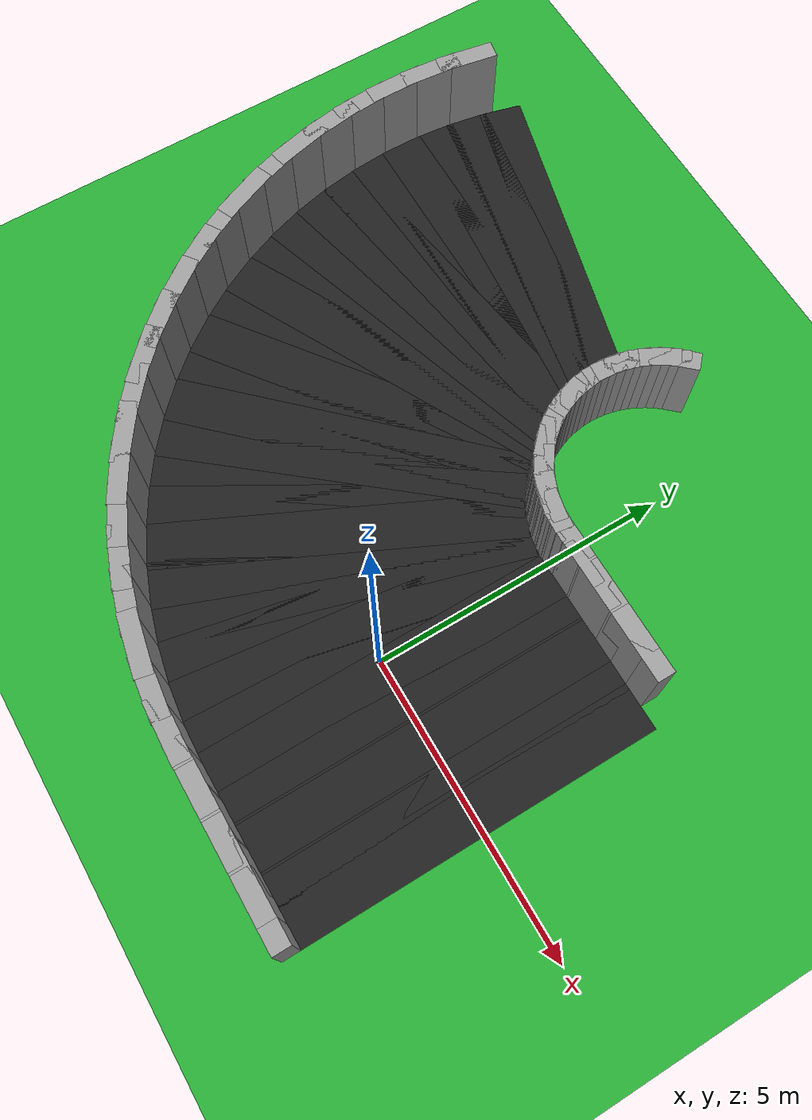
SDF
<sdf version="1.6">
 <world name="obstacle_mid">
  <include><uri>model://sun</uri></include>
  <model name="ground_plane">
   <static>true</static>
   <link name="link">
    <collision name="collision">
     <surface><friction><ode><mu>100</mu><mu2>50</mu2></ode></friction></surface>
     <geometry><plane><normal>0 0 1</normal><size>120 120</size></plane></geometry>
    </collision>
    <visual name="visual">
     <geometry><plane><normal>0 0 1</normal><size>120 120</size></plane></geometry>
     <material>
      <script><uri>file://media/materials/scripts/gazebo.material</uri><name>Gazebo/Green</name></script>
     </material>
    </visual>
   </link>
  </model>
  <model name="asphalt_0">
   <static>true</static>
   <pose>0.200 0.000 0.005 0 0 0.00000</pose>
   <link name="link">
    <visual name="visual">
     <geometry><box><size>0.760 6.000 0.010</size></box></geometry>
     <material>
      <script><uri>file://media/materials/scripts/gazebo.material</uri><name>Gazebo/Black</name></script>
     </material>
    </visual>
   </link>
  </model>
  <model name="curbL_0">
   <static>true</static>
   <pose>0.200 3.150 0.750 0 0 0.00000</pose>
   <link name="link">
    <collision name="collision"><geometry><box><size>0.760 0.300 1.500</size></box></geometry></collision>
    <visual name="visual">
     <geometry><box><size>0.760 0.300 1.500</size></box></geometry>
     <material>
      <script><uri>file://media/materials/scripts/gazebo.material</uri><name>Gazebo/Grey</name></script>
     </material>
    </visual>
   </link>
  </model>
  <model name="curbR_0">
   <static>true</static>
   <pose>0.200 -3.150 0.750 0 0 0.00000</pose>
   <link name="link">
    <collision name="collision"><geometry><box><size>0.760 0.300 1.500</size></box></geometry></collision>
    <visual name="visual">
     <geometry><box><size>0.760 0.300 1.500</size></box></geometry>
     <material>
      <script><uri>file://media/materials/scripts/gazebo.material</uri><name>Gazebo/Grey</name></script>
     </material>
    </visual>
   </link>
  </model>
  <model name="asphalt_1">
   <static>true</static>
   <pose>0.600 0.000 0.005 0 0 0.00000</pose>
   <link name="link">
    <visual name="visual">
     <geometry><box><size>0.760 6.000 0.010</size></box></geometry>
     <material>
      <script><uri>file://media/materials/scripts/gazebo.material</uri><name>Gazebo/Black</name></script>
     </material>
    </visual>
   </link>
  </model>
  <model name="curbL_1">
   <static>true</static>
   <pose>0.600 3.150 0.750 0 0 0.00000</pose>
   <link name="link">
    <collision name="collision"><geometry><box><size>0.760 0.300 1.500</size></box></geometry></collision>
    <visual name="visual">
     <geometry><box><size>0.760 0.300 1.500</size></box></geometry>
     <material>
      <script><uri>file://media/materials/scripts/gazebo.material</uri><name>Gazebo/Grey</name></script>
     </material>
    </visual>
   </link>
  </model>
  <model name="curbR_1">
   <static>true</static>
   <pose>0.600 -3.150 0.750 0 0 0.00000</pose>
   <link name="link">
    <collision name="collision"><geometry><box><size>0.760 0.300 1.500</size></box></geometry></collision>
    <visual name="visual">
     <geometry><box><size>0.760 0.300 1.500</size></box></geometry>
     <material>
      <script><uri>file://media/materials/scripts/gazebo.material</uri><name>Gazebo/Grey</name></script>
     </material>
    </visual>
   </link>
  </model>
  <model name="asphalt_2">
   <static>true</static>
   <pose>1.000 0.000 0.005 0 0 0.00000</pose>
   <link name="link">
    <visual name="visual">
     <geometry><box><size>0.760 6.000 0.010</size></box></geometry>
     <material>
      <script><uri>file://media/materials/scripts/gazebo.material</uri><name>Gazebo/Black</name></script>
     </material>
    </visual>
   </link>
  </model>
  <model name="curbL_2">
   <static>true</static>
   <pose>1.000 3.150 0.750 0 0 0.00000</pose>
   <link name="link">
    <collision name="collision"><geometry><box><size>0.760 0.300 1.500</size></box></geometry></collision>
    <visual name="visual">
     <geometry><box><size>0.760 0.300 1.500</size></box></geometry>
     <material>
      <script><uri>file://media/materials/scripts/gazebo.material</uri><name>Gazebo/Grey</name></script>
     </material>
    </visual>
   </link>
  </model>
  <model name="curbR_2">
   <static>true</static>
   <pose>1.000 -3.150 0.750 0 0 0.00000</pose>
   <link name="link">
    <collision name="collision"><geometry><box><size>0.760 0.300 1.500</size></box></geometry></collision>
    <visual name="visual">
     <geometry><box><size>0.760 0.300 1.500</size></box></geometry>
     <material>
      <script><uri>file://media/materials/scripts/gazebo.material</uri><name>Gazebo/Grey</name></script>
     </material>
    </visual>
   </link>
  </model>
  <model name="asphalt_3">
   <static>true</static>
   <pose>1.400 0.000 0.005 0 0 0.00000</pose>
   <link name="link">
    <visual name="visual">
     <geometry><box><size>0.760 6.000 0.010</size></box></geometry>
     <material>
      <script><uri>file://media/materials/scripts/gazebo.material</uri><name>Gazebo/Black</name></script>
     </material>
    </visual>
   </link>
  </model>
  <model name="curbL_3">
   <static>true</static>
   <pose>1.400 3.150 0.750 0 0 0.00000</pose>
   <link name="link">
    <collision name="collision"><geometry><box><size>0.760 0.300 1.500</size></box></geometry></collision>
    <visual name="visual">
     <geometry><box><size>0.760 0.300 1.500</size></box></geometry>
     <material>
      <script><uri>file://media/materials/scripts/gazebo.material</uri><name>Gazebo/Grey</name></script>
     </material>
    </visual>
   </link>
  </model>
  <model name="curbR_3">
   <static>true</static>
   <pose>1.400 -3.150 0.750 0 0 0.00000</pose>
   <link name="link">
    <collision name="collision"><geometry><box><size>0.760 0.300 1.500</size></box></geometry></collision>
    <visual name="visual">
     <geometry><box><size>0.760 0.300 1.500</size></box></geometry>
     <material>
      <script><uri>file://media/materials/scripts/gazebo.material</uri><name>Gazebo/Grey</name></script>
     </material>
    </visual>
   </link>
  </model>
  <model name="asphalt_4">
   <static>true</static>
   <pose>1.800 0.000 0.005 0 0 0.00000</pose>
   <link name="link">
    <visual name="visual">
     <geometry><box><size>0.760 6.000 0.010</size></box></geometry>
     <material>
      <script><uri>file://media/materials/scripts/gazebo.material</uri><name>Gazebo/Black</name></script>
     </material>
    </visual>
   </link>
  </model>
  <model name="curbL_4">
   <static>true</static>
   <pose>1.800 3.150 0.750 0 0 0.00000</pose>
   <link name="link">
    <collision name="collision"><geometry><box><size>0.760 0.300 1.500</size></box></geometry></collision>
    <visual name="visual">
     <geometry><box><size>0.760 0.300 1.500</size></box></geometry>
     <material>
      <script><uri>file://media/materials/scripts/gazebo.material</uri><name>Gazebo/Grey</name></script>
     </material>
    </visual>
   </link>
  </model>
  <model name="curbR_4">
   <static>true</static>
   <pose>1.800 -3.150 0.750 0 0 0.00000</pose>
   <link name="link">
    <collision name="collision"><geometry><box><size>0.760 0.300 1.500</size></box></geometry></collision>
    <visual name="visual">
     <geometry><box><size>0.760 0.300 1.500</size></box></geometry>
     <material>
      <script><uri>file://media/materials/scripts/gazebo.material</uri><name>Gazebo/Grey</name></script>
     </material>
    </visual>
   </link>
  </model>
  <model name="asphalt_5">
   <static>true</static>
   <pose>2.200 0.000 0.005 0 0 0.00000</pose>
   <link name="link">
    <visual name="visual">
     <geometry><box><size>0.760 6.000 0.010</size></box></geometry>
     <material>
      <script><uri>file://media/materials/scripts/gazebo.material</uri><name>Gazebo/Black</name></script>
     </material>
    </visual>
   </link>
  </model>
  <model name="curbL_5">
   <static>true</static>
   <pose>2.200 3.150 0.750 0 0 0.00000</pose>
   <link name="link">
    <collision name="collision"><geometry><box><size>0.760 0.300 1.500</size></box></geometry></collision>
    <visual name="visual">
     <geometry><box><size>0.760 0.300 1.500</size></box></geometry>
     <material>
      <script><uri>file://media/materials/scripts/gazebo.material</uri><name>Gazebo/Grey</name></script>
     </material>
    </visual>
   </link>
  </model>
  <model name="curbR_5">
   <static>true</static>
   <pose>2.200 -3.150 0.750 0 0 0.00000</pose>
   <link name="link">
    <collision name="collision"><geometry><box><size>0.760 0.300 1.500</size></box></geometry></collision>
    <visual name="visual">
     <geometry><box><size>0.760 0.300 1.500</size></box></geometry>
     <material>
      <script><uri>file://media/materials/scripts/gazebo.material</uri><name>Gazebo/Grey</name></script>
     </material>
    </visual>
   </link>
  </model>
  <model name="asphalt_6">
   <static>true</static>
   <pose>2.600 0.000 0.005 0 0 0.00000</pose>
   <link name="link">
    <visual name="visual">
     <geometry><box><size>0.760 6.000 0.010</size></box></geometry>
     <material>
      <script><uri>file://media/materials/scripts/gazebo.material</uri><name>Gazebo/Black</name></script>
     </material>
    </visual>
   </link>
  </model>
  <model name="curbR_6">
   <static>true</static>
   <pose>2.600 -3.150 0.750 0 0 0.00000</pose>
   <link name="link">
    <collision name="collision"><geometry><box><size>0.760 0.300 1.500</size></box></geometry></collision>
    <visual name="visual">
     <geometry><box><size>0.760 0.300 1.500</size></box></geometry>
     <material>
      <script><uri>file://media/materials/scripts/gazebo.material</uri><name>Gazebo/Grey</name></script>
     </material>
    </visual>
   </link>
  </model>
  <model name="curbL_247">
   <static>true</static>
   <pose>-1.360 6.255 0.750 0 0 -2.31557</pose>
   <link name="link">
    <collision name="collision"><geometry><box><size>0.510 0.300 1.500</size></box></geometry></collision>
    <visual name="visual">
     <geometry><box><size>0.510 0.300 1.500</size></box></geometry>
     <material>
      <script><uri>file://media/materials/scripts/gazebo.material</uri><name>Gazebo/Grey</name></script>
     </material>
    </visual>
   </link>
  </model>
  <model name="curbL_248">
   <static>true</static>
   <pose>-1.457 6.141 0.750 0 0 -2.23432</pose>
   <link name="link">
    <collision name="collision"><geometry><box><size>0.510 0.300 1.500</size></box></geometry></collision>
    <visual name="visual">
     <geometry><box><size>0.510 0.300 1.500</size></box></geometry>
     <material>
      <script><uri>file://media/materials/scripts/gazebo.material</uri><name>Gazebo/Grey</name></script>
     </material>
    </visual>
   </link>
  </model>
  <model name="curbL_249">
   <static>true</static>
   <pose>-1.545 6.019 0.750 0 0 -2.15307</pose>
   <link name="link">
    <collision name="collision"><geometry><box><size>0.510 0.300 1.500</size></box></geometry></collision>
    <visual name="visual">
     <geometry><box><size>0.510 0.300 1.500</size></box></geometry>
     <material>
      <script><uri>file://media/materials/scripts/gazebo.material</uri><name>Gazebo/Grey</name></script>
     </material>
    </visual>
   </link>
  </model>
  <model name="curbL_250">
   <static>true</static>
   <pose>-1.622 5.890 0.750 0 0 -2.07183</pose>
   <link name="link">
    <collision name="collision"><geometry><box><size>0.510 0.300 1.500</size></box></geometry></collision>
    <visual name="visual">
     <geometry><box><size>0.510 0.300 1.500</size></box></geometry>
     <material>
      <script><uri>file://media/materials/scripts/gazebo.material</uri><name>Gazebo/Grey</name></script>
     </material>
    </visual>
   </link>
  </model>
  <model name="curbL_251">
   <static>true</static>
   <pose>-1.689 5.755 0.750 0 0 -1.99058</pose>
   <link name="link">
    <collision name="collision"><geometry><box><size>0.510 0.300 1.500</size></box></geometry></collision>
    <visual name="visual">
     <geometry><box><size>0.510 0.300 1.500</size></box></geometry>
     <material>
      <script><uri>file://media/materials/scripts/gazebo.material</uri><name>Gazebo/Grey</name></script>
     </material>
    </visual>
   </link>
  </model>
  <model name="curbL_252">
   <static>true</static>
   <pose>-1.745 5.616 0.750 0 0 -1.90933</pose>
   <link name="link">
    <collision name="collision"><geometry><box><size>0.510 0.300 1.500</size></box></geometry></collision>
    <visual name="visual">
     <geometry><box><size>0.510 0.300 1.500</size></box></geometry>
     <material>
      <script><uri>file://media/materials/scripts/gazebo.material</uri><name>Gazebo/Grey</name></script>
     </material>
    </visual>
   </link>
  </model>
  <model name="asphalt_253">
   <static>true</static>
   <pose>-4.833 6.273 0.005 0 0 -1.82808</pose>
   <link name="link">
    <visual name="visual">
     <geometry><box><size>0.766 6.000 0.010</size></box></geometry>
     <material>
      <script><uri>file://media/materials/scripts/gazebo.material</uri><name>Gazebo/Black</name></script>
     </material>
    </visual>
   </link>
  </model>
  <model name="curbL_253">
   <static>true</static>
   <pose>-1.789 5.472 0.750 0 0 -1.82808</pose>
   <link name="link">
    <collision name="collision"><geometry><box><size>0.510 0.300 1.500</size></box></geometry></collision>
    <visual name="visual">
     <geometry><box><size>0.510 0.300 1.500</size></box></geometry>
     <material>
      <script><uri>file://media/materials/scripts/gazebo.material</uri><name>Gazebo/Grey</name></script>
     </material>
    </visual>
   </link>
  </model>
  <model name="asphalt_254">
   <static>true</static>
   <pose>-4.920 5.877 0.005 0 0 -1.74683</pose>
   <link name="link">
    <visual name="visual">
     <geometry><box><size>0.766 6.000 0.010</size></box></geometry>
     <material>
      <script><uri>file://media/materials/scripts/gazebo.material</uri><name>Gazebo/Black</name></script>
     </material>
    </visual>
   </link>
  </model>
  <model name="curbL_254">
   <static>true</static>
   <pose>-1.821 5.325 0.750 0 0 -1.74683</pose>
   <link name="link">
    <collision name="collision"><geometry><box><size>0.510 0.300 1.500</size></box></geometry></collision>
    <visual name="visual">
     <geometry><box><size>0.510 0.300 1.500</size></box></geometry>
     <material>
      <script><uri>file://media/materials/scripts/gazebo.material</uri><name>Gazebo/Grey</name></script>
     </material>
    </visual>
   </link>
  </model>
  <model name="curbR_254">
   <static>true</static>
   <pose>-8.019 6.428 0.750 0 0 -1.74683</pose>
   <link name="link">
    <collision name="collision"><geometry><box><size>1.022 0.300 1.500</size></box></geometry></collision>
    <visual name="visual">
     <geometry><box><size>1.022 0.300 1.500</size></box></geometry>
     <material>
      <script><uri>file://media/materials/scripts/gazebo.material</uri><name>Gazebo/Grey</name></script>
     </material>
    </visual>
   </link>
  </model>
  <model name="asphalt_255">
   <static>true</static>
   <pose>-4.975 5.474 0.005 0 0 -1.66559</pose>
   <link name="link">
    <visual name="visual">
     <geometry><box><size>0.766 6.000 0.010</size></box></geometry>
     <material>
      <script><uri>file://media/materials/scripts/gazebo.material</uri><name>Gazebo/Black</name></script>
     </material>
    </visual>
   </link>
  </model>
  <model name="curbL_255">
   <static>true</static>
   <pose>-1.842 5.176 0.750 0 0 -1.66559</pose>
   <link name="link">
    <collision name="collision"><geometry><box><size>0.510 0.300 1.500</size></box></geometry></collision>
    <visual name="visual">
     <geometry><box><size>0.510 0.300 1.500</size></box></geometry>
     <material>
      <script><uri>file://media/materials/scripts/gazebo.material</uri><name>Gazebo/Grey</name></script>
     </material>
    </visual>
   </link>
  </model>
  <model name="curbR_255">
   <static>true</static>
   <pose>-8.108 5.772 0.750 0 0 -1.66559</pose>
   <link name="link">
    <collision name="collision"><geometry><box><size>1.022 0.300 1.500</size></box></geometry></collision>
    <visual name="visual">
     <geometry><box><size>1.022 0.300 1.500</size></box></geometry>
     <material>
      <script><uri>file://media/materials/scripts/gazebo.material</uri><name>Gazebo/Grey</name></script>
     </material>
    </visual>
   </link>
  </model>
  <model name="asphalt_256">
   <static>true</static>
   <pose>-4.997 5.069 0.005 0 0 -1.58434</pose>
   <link name="link">
    <visual name="visual">
     <geometry><box><size>0.766 6.000 0.010</size></box></geometry>
     <material>
      <script><uri>file://media/materials/scripts/gazebo.material</uri><name>Gazebo/Black</name></script>
     </material>
    </visual>
   </link>
  </model>
  <model name="curbL_256">
   <static>true</static>
   <pose>-1.850 5.026 0.750 0 0 -1.58434</pose>
   <link name="link">
    <collision name="collision"><geometry><box><size>0.510 0.300 1.500</size></box></geometry></collision>
    <visual name="visual">
     <geometry><box><size>0.510 0.300 1.500</size></box></geometry>
     <material>
      <script><uri>file://media/materials/scripts/gazebo.material</uri><name>Gazebo/Grey</name></script>
     </material>
    </visual>
   </link>
  </model>
  <model name="curbR_256">
   <static>true</static>
   <pose>-8.144 5.112 0.750 0 0 -1.58434</pose>
   <link name="link">
    <collision name="collision"><geometry><box><size>1.022 0.300 1.500</size></box></geometry></collision>
    <visual name="visual">
     <geometry><box><size>1.022 0.300 1.500</size></box></geometry>
     <material>
      <script><uri>file://media/materials/scripts/gazebo.material</uri><name>Gazebo/Grey</name></script>
     </material>
    </visual>
   </link>
  </model>
  <model name="asphalt_257">
   <static>true</static>
   <pose>-4.986 4.663 0.005 0 0 -1.50309</pose>
   <link name="link">
    <visual name="visual">
     <geometry><box><size>0.766 6.000 0.010</size></box></geometry>
     <material>
      <script><uri>file://media/materials/scripts/gazebo.material</uri><name>Gazebo/Black</name></script>
     </material>
    </visual>
   </link>
  </model>
  <model name="curbL_257">
   <static>true</static>
   <pose>-1.846 4.876 0.750 0 0 -1.50309</pose>
   <link name="link">
    <collision name="collision"><geometry><box><size>0.510 0.300 1.500</size></box></geometry></collision>
    <visual name="visual">
     <geometry><box><size>0.510 0.300 1.500</size></box></geometry>
     <material>
      <script><uri>file://media/materials/scripts/gazebo.material</uri><name>Gazebo/Grey</name></script>
     </material>
    </visual>
   </link>
  </model>
  <model name="curbR_257">
   <static>true</static>
   <pose>-8.126 4.450 0.750 0 0 -1.50309</pose>
   <link name="link">
    <collision name="collision"><geometry><box><size>1.022 0.300 1.500</size></box></geometry></collision>
    <visual name="visual">
     <geometry><box><size>1.022 0.300 1.500</size></box></geometry>
     <material>
      <script><uri>file://media/materials/scripts/gazebo.material</uri><name>Gazebo/Grey</name></script>
     </material>
    </visual>
   </link>
  </model>
  <model name="asphalt_258">
   <static>true</static>
   <pose>-4.942 4.260 0.005 0 0 -1.42184</pose>
   <link name="link">
    <visual name="visual">
     <geometry><box><size>0.766 6.000 0.010</size></box></geometry>
     <material>
      <script><uri>file://media/materials/scripts/gazebo.material</uri><name>Gazebo/Black</name></script>
     </material>
    </visual>
   </link>
  </model>
  <model name="curbL_258">
   <static>true</static>
   <pose>-1.829 4.727 0.750 0 0 -1.42184</pose>
   <link name="link">
    <collision name="collision"><geometry><box><size>0.510 0.300 1.500</size></box></geometry></collision>
    <visual name="visual">
     <geometry><box><size>0.510 0.300 1.500</size></box></geometry>
     <material>
      <script><uri>file://media/materials/scripts/gazebo.material</uri><name>Gazebo/Grey</name></script>
     </material>
    </visual>
   </link>
  </model>
  <model name="curbR_258">
   <static>true</static>
   <pose>-8.054 3.793 0.750 0 0 -1.42184</pose>
   <link name="link">
    <collision name="collision"><geometry><box><size>1.022 0.300 1.500</size></box></geometry></collision>
    <visual name="visual">
     <geometry><box><size>1.022 0.300 1.500</size></box></geometry>
     <material>
      <script><uri>file://media/materials/scripts/gazebo.material</uri><name>Gazebo/Grey</name></script>
     </material>
    </visual>
   </link>
  </model>
  <model name="asphalt_259">
   <static>true</static>
   <pose>-4.865 3.861 0.005 0 0 -1.34059</pose>
   <link name="link">
    <visual name="visual">
     <geometry><box><size>0.766 6.000 0.010</size></box></geometry>
     <material>
      <script><uri>file://media/materials/scripts/gazebo.material</uri><name>Gazebo/Black</name></script>
     </material>
    </visual>
   </link>
  </model>
  <model name="curbL_259">
   <static>true</static>
   <pose>-1.801 4.579 0.750 0 0 -1.34059</pose>
   <link name="link">
    <collision name="collision"><geometry><box><size>0.510 0.300 1.500</size></box></geometry></collision>
    <visual name="visual">
     <geometry><box><size>0.510 0.300 1.500</size></box></geometry>
     <material>
      <script><uri>file://media/materials/scripts/gazebo.material</uri><name>Gazebo/Grey</name></script>
     </material>
    </visual>
   </link>
  </model>
  <model name="curbR_259">
   <static>true</static>
   <pose>-7.930 3.143 0.750 0 0 -1.34059</pose>
   <link name="link">
    <collision name="collision"><geometry><box><size>1.022 0.300 1.500</size></box></geometry></collision>
    <visual name="visual">
     <geometry><box><size>1.022 0.300 1.500</size></box></geometry>
     <material>
      <script><uri>file://media/materials/scripts/gazebo.material</uri><name>Gazebo/Grey</name></script>
     </material>
    </visual>
   </link>
  </model>
  <model name="asphalt_260">
   <static>true</static>
   <pose>-4.757 3.470 0.005 0 0 -1.25935</pose>
   <link name="link">
    <visual name="visual">
     <geometry><box><size>0.766 6.000 0.010</size></box></geometry>
     <material>
      <script><uri>file://media/materials/scripts/gazebo.material</uri><name>Gazebo/Black</name></script>
     </material>
    </visual>
   </link>
  </model>
  <model name="curbL_260">
   <static>true</static>
   <pose>-1.761 4.435 0.750 0 0 -1.25935</pose>
   <link name="link">
    <collision name="collision"><geometry><box><size>0.510 0.300 1.500</size></box></geometry></collision>
    <visual name="visual">
     <geometry><box><size>0.510 0.300 1.500</size></box></geometry>
     <material>
      <script><uri>file://media/materials/scripts/gazebo.material</uri><name>Gazebo/Grey</name></script>
     </material>
    </visual>
   </link>
  </model>
  <model name="curbR_260">
   <static>true</static>
   <pose>-7.753 2.506 0.750 0 0 -1.25935</pose>
   <link name="link">
    <collision name="collision"><geometry><box><size>1.022 0.300 1.500</size></box></geometry></collision>
    <visual name="visual">
     <geometry><box><size>1.022 0.300 1.500</size></box></geometry>
     <material>
      <script><uri>file://media/materials/scripts/gazebo.material</uri><name>Gazebo/Grey</name></script>
     </material>
    </visual>
   </link>
  </model>
  <model name="asphalt_261">
   <static>true</static>
   <pose>-4.617 3.089 0.005 0 0 -1.17810</pose>
   <link name="link">
    <visual name="visual">
     <geometry><box><size>0.766 6.000 0.010</size></box></geometry>
     <material>
      <script><uri>file://media/materials/scripts/gazebo.material</uri><name>Gazebo/Black</name></script>
     </material>
    </visual>
   </link>
  </model>
  <model name="curbL_261">
   <static>true</static>
   <pose>-1.709 4.293 0.750 0 0 -1.17810</pose>
   <link name="link">
    <collision name="collision"><geometry><box><size>0.510 0.300 1.500</size></box></geometry></collision>
    <visual name="visual">
     <geometry><box><size>0.510 0.300 1.500</size></box></geometry>
     <material>
      <script><uri>file://media/materials/scripts/gazebo.material</uri><name>Gazebo/Grey</name></script>
     </material>
    </visual>
   </link>
  </model>
  <model name="curbR_261">
   <static>true</static>
   <pose>-7.525 1.885 0.750 0 0 -1.17810</pose>
   <link name="link">
    <collision name="collision"><geometry><box><size>1.022 0.300 1.500</size></box></geometry></collision>
    <visual name="visual">
     <geometry><box><size>1.022 0.300 1.500</size></box></geometry>
     <material>
      <script><uri>file://media/materials/scripts/gazebo.material</uri><name>Gazebo/Grey</name></script>
     </material>
    </visual>
   </link>
  </model>
  <model name="asphalt_262">
   <static>true</static>
   <pose>-4.446 2.721 0.005 0 0 -1.09685</pose>
   <link name="link">
    <visual name="visual">
     <geometry><box><size>0.766 6.000 0.010</size></box></geometry>
     <material>
      <script><uri>file://media/materials/scripts/gazebo.material</uri><name>Gazebo/Black</name></script>
     </material>
    </visual>
   </link>
  </model>
  <model name="curbL_262">
   <static>true</static>
   <pose>-1.646 4.157 0.750 0 0 -1.09685</pose>
   <link name="link">
    <collision name="collision"><geometry><box><size>0.510 0.300 1.500</size></box></geometry></collision>
    <visual name="visual">
     <geometry><box><size>0.510 0.300 1.500</size></box></geometry>
     <material>
      <script><uri>file://media/materials/scripts/gazebo.material</uri><name>Gazebo/Grey</name></script>
     </material>
    </visual>
   </link>
  </model>
  <model name="curbR_262">
   <static>true</static>
   <pose>-7.247 1.284 0.750 0 0 -1.09685</pose>
   <link name="link">
    <collision name="collision"><geometry><box><size>1.022 0.300 1.500</size></box></geometry></collision>
    <visual name="visual">
     <geometry><box><size>1.022 0.300 1.500</size></box></geometry>
     <material>
      <script><uri>file://media/materials/scripts/gazebo.material</uri><name>Gazebo/Grey</name></script>
     </material>
    </visual>
   </link>
  </model>
  <model name="asphalt_263">
   <static>true</static>
   <pose>-4.247 2.367 0.005 0 0 -1.01560</pose>
   <link name="link">
    <visual name="visual">
     <geometry><box><size>0.766 6.000 0.010</size></box></geometry>
     <material>
      <script><uri>file://media/materials/scripts/gazebo.material</uri><name>Gazebo/Black</name></script>
     </material>
    </visual>
   </link>
  </model>
  <model name="curbL_263">
   <static>true</static>
   <pose>-1.572 4.026 0.750 0 0 -1.01560</pose>
   <link name="link">
    <collision name="collision"><geometry><box><size>0.510 0.300 1.500</size></box></geometry></collision>
    <visual name="visual">
     <geometry><box><size>0.510 0.300 1.500</size></box></geometry>
     <material>
      <script><uri>file://media/materials/scripts/gazebo.material</uri><name>Gazebo/Grey</name></script>
     </material>
    </visual>
   </link>
  </model>
  <model name="curbR_263">
   <static>true</static>
   <pose>-6.921 0.708 0.750 0 0 -1.01560</pose>
   <link name="link">
    <collision name="collision"><geometry><box><size>1.022 0.300 1.500</size></box></geometry></collision>
    <visual name="visual">
     <geometry><box><size>1.022 0.300 1.500</size></box></geometry>
     <material>
      <script><uri>file://media/materials/scripts/gazebo.material</uri><name>Gazebo/Grey</name></script>
     </material>
    </visual>
   </link>
  </model>
  <model name="asphalt_264">
   <static>true</static>
   <pose>-4.019 2.031 0.005 0 0 -0.93435</pose>
   <link name="link">
    <visual name="visual">
     <geometry><box><size>0.766 6.000 0.010</size></box></geometry>
     <material>
      <script><uri>file://media/materials/scripts/gazebo.material</uri><name>Gazebo/Black</name></script>
     </material>
    </visual>
   </link>
  </model>
  <model name="curbL_264">
   <static>true</static>
   <pose>-1.488 3.902 0.750 0 0 -0.93435</pose>
   <link name="link">
    <collision name="collision"><geometry><box><size>0.510 0.300 1.500</size></box></geometry></collision>
    <visual name="visual">
     <geometry><box><size>0.510 0.300 1.500</size></box></geometry>
     <material>
      <script><uri>file://media/materials/scripts/gazebo.material</uri><name>Gazebo/Grey</name></script>
     </material>
    </visual>
   </link>
  </model>
  <model name="curbR_264">
   <static>true</static>
   <pose>-6.550 0.161 0.750 0 0 -0.93435</pose>
   <link name="link">
    <collision name="collision"><geometry><box><size>1.022 0.300 1.500</size></box></geometry></collision>
    <visual name="visual">
     <geometry><box><size>1.022 0.300 1.500</size></box></geometry>
     <material>
      <script><uri>file://media/materials/scripts/gazebo.material</uri><name>Gazebo/Grey</name></script>
     </material>
    </visual>
   </link>
  </model>
  <model name="asphalt_265">
   <static>true</static>
   <pose>-3.765 1.715 0.005 0 0 -0.85310</pose>
   <link name="link">
    <visual name="visual">
     <geometry><box><size>0.766 6.000 0.010</size></box></geometry>
     <material>
      <script><uri>file://media/materials/scripts/gazebo.material</uri><name>Gazebo/Black</name></script>
     </material>
    </visual>
   </link>
  </model>
  <model name="curbL_265">
   <static>true</static>
   <pose>-1.394 3.785 0.750 0 0 -0.85310</pose>
   <link name="link">
    <collision name="collision"><geometry><box><size>0.510 0.300 1.500</size></box></geometry></collision>
    <visual name="visual">
     <geometry><box><size>0.510 0.300 1.500</size></box></geometry>
     <material>
      <script><uri>file://media/materials/scripts/gazebo.material</uri><name>Gazebo/Grey</name></script>
     </material>
    </visual>
   </link>
  </model>
  <model name="curbR_265">
   <static>true</static>
   <pose>-6.136 -0.355 0.750 0 0 -0.85310</pose>
   <link name="link">
    <collision name="collision"><geometry><box><size>1.022 0.300 1.500</size></box></geometry></collision>
    <visual name="visual">
     <geometry><box><size>1.022 0.300 1.500</size></box></geometry>
     <material>
      <script><uri>file://media/materials/scripts/gazebo.material</uri><name>Gazebo/Grey</name></script>
     </material>
    </visual>
   </link>
  </model>
  <model name="asphalt_266">
   <static>true</static>
   <pose>-3.485 1.420 0.005 0 0 -0.77186</pose>
   <link name="link">
    <visual name="visual">
     <geometry><box><size>0.766 6.000 0.010</size></box></geometry>
     <material>
      <script><uri>file://media/materials/scripts/gazebo.material</uri><name>Gazebo/Black</name></script>
     </material>
    </visual>
   </link>
  </model>
  <model name="curbL_266">
   <static>true</static>
   <pose>-1.290 3.676 0.750 0 0 -0.77186</pose>
   <link name="link">
    <collision name="collision"><geometry><box><size>0.510 0.300 1.500</size></box></geometry></collision>
    <visual name="visual">
     <geometry><box><size>0.510 0.300 1.500</size></box></geometry>
     <material>
      <script><uri>file://media/materials/scripts/gazebo.material</uri><name>Gazebo/Grey</name></script>
     </material>
    </visual>
   </link>
  </model>
  <model name="curbR_266">
   <static>true</static>
   <pose>-5.681 -0.835 0.750 0 0 -0.77186</pose>
   <link name="link">
    <collision name="collision"><geometry><box><size>1.022 0.300 1.500</size></box></geometry></collision>
    <visual name="visual">
     <geometry><box><size>1.022 0.300 1.500</size></box></geometry>
     <material>
      <script><uri>file://media/materials/scripts/gazebo.material</uri><name>Gazebo/Grey</name></script>
     </material>
    </visual>
   </link>
  </model>
  <model name="asphalt_267">
   <static>true</static>
   <pose>-3.183 1.149 0.005 0 0 -0.69061</pose>
   <link name="link">
    <visual name="visual">
     <geometry><box><size>0.766 6.000 0.010</size></box></geometry>
     <material>
      <script><uri>file://media/materials/scripts/gazebo.material</uri><name>Gazebo/Black</name></script>
     </material>
    </visual>
   </link>
  </model>
  <model name="curbL_267">
   <static>true</static>
   <pose>-1.178 3.575 0.750 0 0 -0.69061</pose>
   <link name="link">
    <collision name="collision"><geometry><box><size>0.510 0.300 1.500</size></box></geometry></collision>
    <visual name="visual">
     <geometry><box><size>0.510 0.300 1.500</size></box></geometry>
     <material>
      <script><uri>file://media/materials/scripts/gazebo.material</uri><name>Gazebo/Grey</name></script>
     </material>
    </visual>
   </link>
  </model>
  <model name="curbR_267">
   <static>true</static>
   <pose>-5.188 -1.277 0.750 0 0 -0.69061</pose>
   <link name="link">
    <collision name="collision"><geometry><box><size>1.022 0.300 1.500</size></box></geometry></collision>
    <visual name="visual">
     <geometry><box><size>1.022 0.300 1.500</size></box></geometry>
     <material>
      <script><uri>file://media/materials/scripts/gazebo.material</uri><name>Gazebo/Grey</name></script>
     </material>
    </visual>
   </link>
  </model>
  <model name="asphalt_268">
   <static>true</static>
   <pose>-2.860 0.904 0.005 0 0 -0.60936</pose>
   <link name="link">
    <visual name="visual">
     <geometry><box><size>0.766 6.000 0.010</size></box></geometry>
     <material>
      <script><uri>file://media/materials/scripts/gazebo.material</uri><name>Gazebo/Black</name></script>
     </material>
    </visual>
   </link>
  </model>
  <model name="curbL_268">
   <static>true</static>
   <pose>-1.059 3.484 0.750 0 0 -0.60936</pose>
   <link name="link">
    <collision name="collision"><geometry><box><size>0.510 0.300 1.500</size></box></geometry></collision>
    <visual name="visual">
     <geometry><box><size>0.510 0.300 1.500</size></box></geometry>
     <material>
      <script><uri>file://media/materials/scripts/gazebo.material</uri><name>Gazebo/Grey</name></script>
     </material>
    </visual>
   </link>
  </model>
  <model name="curbR_268">
   <static>true</static>
   <pose>-4.662 -1.677 0.750 0 0 -0.60936</pose>
   <link name="link">
    <collision name="collision"><geometry><box><size>1.022 0.300 1.500</size></box></geometry></collision>
    <visual name="visual">
     <geometry><box><size>1.022 0.300 1.500</size></box></geometry>
     <material>
      <script><uri>file://media/materials/scripts/gazebo.material</uri><name>Gazebo/Grey</name></script>
     </material>
    </visual>
   </link>
  </model>
  <model name="asphalt_269">
   <static>true</static>
   <pose>-2.518 0.685 0.005 0 0 -0.52811</pose>
   <link name="link">
    <visual name="visual">
     <geometry><box><size>0.766 6.000 0.010</size></box></geometry>
     <material>
      <script><uri>file://media/materials/scripts/gazebo.material</uri><name>Gazebo/Black</name></script>
     </material>
    </visual>
   </link>
  </model>
  <model name="curbL_269">
   <static>true</static>
   <pose>-0.932 3.404 0.750 0 0 -0.52811</pose>
   <link name="link">
    <collision name="collision"><geometry><box><size>0.510 0.300 1.500</size></box></geometry></collision>
    <visual name="visual">
     <geometry><box><size>0.510 0.300 1.500</size></box></geometry>
     <material>
      <script><uri>file://media/materials/scripts/gazebo.material</uri><name>Gazebo/Grey</name></script>
     </material>
    </visual>
   </link>
  </model>
  <model name="curbR_269">
   <static>true</static>
   <pose>-4.104 -2.034 0.750 0 0 -0.52811</pose>
   <link name="link">
    <collision name="collision"><geometry><box><size>1.022 0.300 1.500</size></box></geometry></collision>
    <visual name="visual">
     <geometry><box><size>1.022 0.300 1.500</size></box></geometry>
     <material>
      <script><uri>file://media/materials/scripts/gazebo.material</uri><name>Gazebo/Grey</name></script>
     </material>
    </visual>
   </link>
  </model>
  <model name="asphalt_270">
   <static>true</static>
   <pose>-2.160 0.495 0.005 0 0 -0.44686</pose>
   <link name="link">
    <visual name="visual">
     <geometry><box><size>0.766 6.000 0.010</size></box></geometry>
     <material>
      <script><uri>file://media/materials/scripts/gazebo.material</uri><name>Gazebo/Black</name></script>
     </material>
    </visual>
   </link>
  </model>
  <model name="curbL_270">
   <static>true</static>
   <pose>-0.799 3.333 0.750 0 0 -0.44686</pose>
   <link name="link">
    <collision name="collision"><geometry><box><size>0.510 0.300 1.500</size></box></geometry></collision>
    <visual name="visual">
     <geometry><box><size>0.510 0.300 1.500</size></box></geometry>
     <material>
      <script><uri>file://media/materials/scripts/gazebo.material</uri><name>Gazebo/Grey</name></script>
     </material>
    </visual>
   </link>
  </model>
  <model name="curbR_270">
   <static>true</static>
   <pose>-3.520 -2.344 0.750 0 0 -0.44686</pose>
   <link name="link">
    <collision name="collision"><geometry><box><size>1.022 0.300 1.500</size></box></geometry></collision>
    <visual name="visual">
     <geometry><box><size>1.022 0.300 1.500</size></box></geometry>
     <material>
      <script><uri>file://media/materials/scripts/gazebo.material</uri><name>Gazebo/Grey</name></script>
     </material>
    </visual>
   </link>
  </model>
  <model name="asphalt_271">
   <static>true</static>
   <pose>-1.787 0.334 0.005 0 0 -0.36562</pose>
   <link name="link">
    <visual name="visual">
     <geometry><box><size>0.766 6.000 0.010</size></box></geometry>
     <material>
      <script><uri>file://media/materials/scripts/gazebo.material</uri><name>Gazebo/Black</name></script>
     </material>
    </visual>
   </link>
  </model>
  <model name="curbL_271">
   <static>true</static>
   <pose>-0.661 3.274 0.750 0 0 -0.36562</pose>
   <link name="link">
    <collision name="collision"><geometry><box><size>0.510 0.300 1.500</size></box></geometry></collision>
    <visual name="visual">
     <geometry><box><size>0.510 0.300 1.500</size></box></geometry>
     <material>
      <script><uri>file://media/materials/scripts/gazebo.material</uri><name>Gazebo/Grey</name></script>
     </material>
    </visual>
   </link>
  </model>
  <model name="curbR_271">
   <static>true</static>
   <pose>-2.912 -2.605 0.750 0 0 -0.36562</pose>
   <link name="link">
    <collision name="collision"><geometry><box><size>1.022 0.300 1.500</size></box></geometry></collision>
    <visual name="visual">
     <geometry><box><size>1.022 0.300 1.500</size></box></geometry>
     <material>
      <script><uri>file://media/materials/scripts/gazebo.material</uri><name>Gazebo/Grey</name></script>
     </material>
    </visual>
   </link>
  </model>
  <model name="asphalt_272">
   <static>true</static>
   <pose>-1.402 0.205 0.005 0 0 -0.28437</pose>
   <link name="link">
    <visual name="visual">
     <geometry><box><size>0.766 6.000 0.010</size></box></geometry>
     <material>
      <script><uri>file://media/materials/scripts/gazebo.material</uri><name>Gazebo/Black</name></script>
     </material>
    </visual>
   </link>
  </model>
  <model name="curbL_272">
   <static>true</static>
   <pose>-0.519 3.226 0.750 0 0 -0.28437</pose>
   <link name="link">
    <collision name="collision"><geometry><box><size>0.510 0.300 1.500</size></box></geometry></collision>
    <visual name="visual">
     <geometry><box><size>0.510 0.300 1.500</size></box></geometry>
     <material>
      <script><uri>file://media/materials/scripts/gazebo.material</uri><name>Gazebo/Grey</name></script>
     </material>
    </visual>
   </link>
  </model>
  <model name="curbR_272">
   <static>true</static>
   <pose>-2.285 -2.816 0.750 0 0 -0.28437</pose>
   <link name="link">
    <collision name="collision"><geometry><box><size>1.022 0.300 1.500</size></box></geometry></collision>
    <visual name="visual">
     <geometry><box><size>1.022 0.300 1.500</size></box></geometry>
     <material>
      <script><uri>file://media/materials/scripts/gazebo.material</uri><name>Gazebo/Grey</name></script>
     </material>
    </visual>
   </link>
  </model>
  <model name="asphalt_273">
   <static>true</static>
   <pose>-1.008 0.107 0.005 0 0 -0.20312</pose>
   <link name="link">
    <visual name="visual">
     <geometry><box><size>0.766 6.000 0.010</size></box></geometry>
     <material>
      <script><uri>file://media/materials/scripts/gazebo.material</uri><name>Gazebo/Black</name></script>
     </material>
    </visual>
   </link>
  </model>
  <model name="curbL_273">
   <static>true</static>
   <pose>-0.373 3.190 0.750 0 0 -0.20312</pose>
   <link name="link">
    <collision name="collision"><geometry><box><size>0.510 0.300 1.500</size></box></geometry></collision>
    <visual name="visual">
     <geometry><box><size>0.510 0.300 1.500</size></box></geometry>
     <material>
      <script><uri>file://media/materials/scripts/gazebo.material</uri><name>Gazebo/Grey</name></script>
     </material>
    </visual>
   </link>
  </model>
  <model name="curbR_273">
   <static>true</static>
   <pose>-1.643 -2.976 0.750 0 0 -0.20312</pose>
   <link name="link">
    <collision name="collision"><geometry><box><size>1.022 0.300 1.500</size></box></geometry></collision>
    <visual name="visual">
     <geometry><box><size>1.022 0.300 1.500</size></box></geometry>
     <material>
      <script><uri>file://media/materials/scripts/gazebo.material</uri><name>Gazebo/Grey</name></script>
     </material>
    </visual>
   </link>
  </model>
  <model name="asphalt_274">
   <static>true</static>
   <pose>-0.608 0.041 0.005 0 0 -0.12187</pose>
   <link name="link">
    <visual name="visual">
     <geometry><box><size>0.766 6.000 0.010</size></box></geometry>
     <material>
      <script><uri>file://media/materials/scripts/gazebo.material</uri><name>Gazebo/Black</name></script>
     </material>
    </visual>
   </link>
  </model>
  <model name="curbL_274">
   <static>true</static>
   <pose>-0.225 3.165 0.750 0 0 -0.12187</pose>
   <link name="link">
    <collision name="collision"><geometry><box><size>0.510 0.300 1.500</size></box></geometry></collision>
    <visual name="visual">
     <geometry><box><size>0.510 0.300 1.500</size></box></geometry>
     <material>
      <script><uri>file://media/materials/scripts/gazebo.material</uri><name>Gazebo/Grey</name></script>
     </material>
    </visual>
   </link>
  </model>
  <model name="curbR_274">
   <static>true</static>
   <pose>-0.990 -3.083 0.750 0 0 -0.12187</pose>
   <link name="link">
    <collision name="collision"><geometry><box><size>1.022 0.300 1.500</size></box></geometry></collision>
    <visual name="visual">
     <geometry><box><size>1.022 0.300 1.500</size></box></geometry>
     <material>
      <script><uri>file://media/materials/scripts/gazebo.material</uri><name>Gazebo/Grey</name></script>
     </material>
    </visual>
   </link>
  </model>
  <model name="asphalt_275">
   <static>true</static>
   <pose>-0.203 0.008 0.005 0 0 -0.04062</pose>
   <link name="link">
    <visual name="visual">
     <geometry><box><size>0.766 6.000 0.010</size></box></geometry>
     <material>
      <script><uri>file://media/materials/scripts/gazebo.material</uri><name>Gazebo/Black</name></script>
     </material>
    </visual>
   </link>
  </model>
  <model name="curbL_275">
   <static>true</static>
   <pose>-0.075 3.153 0.750 0 0 -0.04062</pose>
   <link name="link">
    <collision name="collision"><geometry><box><size>0.510 0.300 1.500</size></box></geometry></collision>
    <visual name="visual">
     <geometry><box><size>0.510 0.300 1.500</size></box></geometry>
     <material>
      <script><uri>file://media/materials/scripts/gazebo.material</uri><name>Gazebo/Grey</name></script>
     </material>
    </visual>
   </link>
  </model>
  <model name="curbR_275">
   <static>true</static>
   <pose>-0.331 -3.137 0.750 0 0 -0.04062</pose>
   <link name="link">
    <collision name="collision"><geometry><box><size>1.022 0.300 1.500</size></box></geometry></collision>
    <visual name="visual">
     <geometry><box><size>1.022 0.300 1.500</size></box></geometry>
     <material>
      <script><uri>file://media/materials/scripts/gazebo.material</uri><name>Gazebo/Grey</name></script>
     </material>
    </visual>
   </link>
  </model>
 </world>
</sdf>
